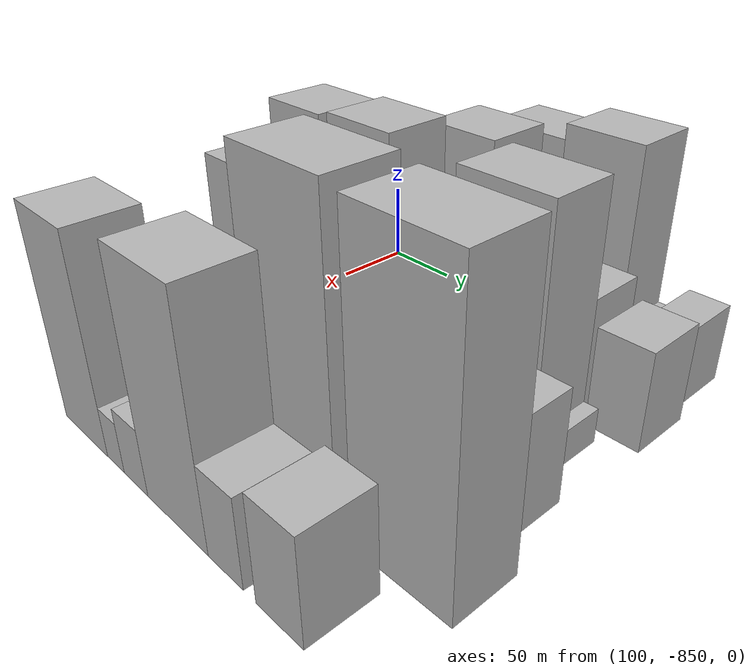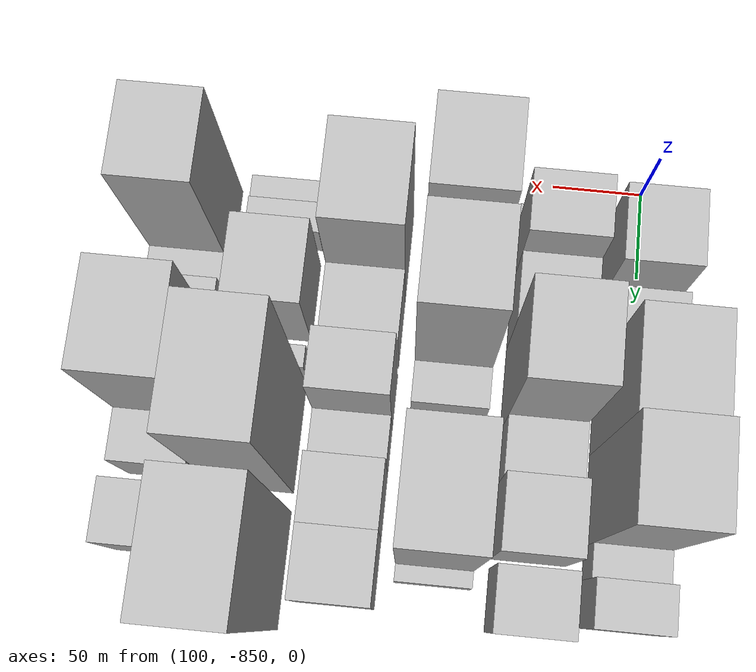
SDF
<sdf version="1.6">
 <world name="default">
  <model name="building_1">
   <static>1</static>
   <pose>100.0000 -804.8391 0 0.000000 0.000000 0.000000</pose>
   <link name="link">
    <pose>0 0 37.50 0 0 0</pose>
    <collision name="collision"><geometry><box><size>40.0000 40.3217 75.0000</size></box></geometry></collision>
    <visual name="visual">
     <cast_shadows>0</cast_shadows>
     <geometry><box><size>40.0000 40.3217 75.0000</size></box></geometry>
     <material>
      <script>
       <uri>model://HANNAS_wall/materials/scripts</uri>
       <uri>model://HANNAS_wall/materials/textures</uri>
       <name>vrc/HANNAS_wall</name>
      </script>
     </material>
    </visual>
   </link>
  </model>
  <model name="building_2">
   <static>1</static>
   <pose>100.0000 -767.2053 0 0.000000 0.000000 0.000000</pose>
   <link name="link">
    <pose>0 0 24.00 0 0 0</pose>
    <collision name="collision"><geometry><box><size>40.0000 24.9459 48.0000</size></box></geometry></collision>
    <visual name="visual">
     <cast_shadows>0</cast_shadows>
     <geometry><box><size>40.0000 24.9459 48.0000</size></box></geometry>
     <material>
      <script>
       <uri>model://HANNAS_wall/materials/scripts</uri>
       <uri>model://HANNAS_wall/materials/textures</uri>
       <name>vrc/HANNAS_wall</name>
      </script>
     </material>
    </visual>
   </link>
  </model>
  <model name="building_3">
   <static>1</static>
   <pose>100.0000 -722.9092 0 0.000000 0.000000 0.000000</pose>
   <link name="link">
    <pose>0 0 64.50 0 0 0</pose>
    <collision name="collision"><geometry><box><size>40.0000 49.6463 129.0000</size></box></geometry></collision>
    <visual name="visual">
     <cast_shadows>0</cast_shadows>
     <geometry><box><size>40.0000 49.6463 129.0000</size></box></geometry>
     <material>
      <script>
       <uri>model://HANNAS_wall/materials/scripts</uri>
       <uri>model://HANNAS_wall/materials/textures</uri>
       <name>vrc/HANNAS_wall</name>
      </script>
     </material>
    </visual>
   </link>
  </model>
  <model name="building_4">
   <static>1</static>
   <pose>100.0000 -673.7390 0 0.000000 0.000000 0.000000</pose>
   <link name="link">
    <pose>0 0 69.00 0 0 0</pose>
    <collision name="collision"><geometry><box><size>40.0000 48.6941 138.0000</size></box></geometry></collision>
    <visual name="visual">
     <cast_shadows>0</cast_shadows>
     <geometry><box><size>40.0000 48.6941 138.0000</size></box></geometry>
     <material>
      <script>
       <uri>model://HANNAS_wall/materials/scripts</uri>
       <uri>model://HANNAS_wall/materials/textures</uri>
       <name>vrc/HANNAS_wall</name>
      </script>
     </material>
    </visual>
   </link>
  </model>
  <model name="building_5">
   <static>1</static>
   <pose>100.0000 -640.6118 0 0.000000 0.000000 0.000000</pose>
   <link name="link">
    <pose>0 0 16.50 0 0 0</pose>
    <collision name="collision"><geometry><box><size>40.0000 17.5602 33.0000</size></box></geometry></collision>
    <visual name="visual">
     <cast_shadows>0</cast_shadows>
     <geometry><box><size>40.0000 17.5602 33.0000</size></box></geometry>
     <material>
      <script>
       <uri>model://HANNAS_wall/materials/scripts</uri>
       <uri>model://HANNAS_wall/materials/textures</uri>
       <name>vrc/HANNAS_wall</name>
      </script>
     </material>
    </visual>
   </link>
  </model>
  <model name="building_6">
   <static>1</static>
   <pose>100.0000 -619.4572 0 0.000000 0.000000 0.000000</pose>
   <link name="link">
    <pose>0 0 24.00 0 0 0</pose>
    <collision name="collision"><geometry><box><size>40.0000 24.7491 48.0000</size></box></geometry></collision>
    <visual name="visual">
     <cast_shadows>0</cast_shadows>
     <geometry><box><size>40.0000 24.7491 48.0000</size></box></geometry>
     <material>
      <script>
       <uri>model://HANNAS_wall/materials/scripts</uri>
       <uri>model://HANNAS_wall/materials/textures</uri>
       <name>vrc/HANNAS_wall</name>
      </script>
     </material>
    </visual>
   </link>
  </model>
  <model name="building_49">
   <static>1</static>
   <pose>149.0000 -825.1503 0 0.000000 0.000000 0.000000</pose>
   <link name="link">
    <pose>0 0 10.50 0 0 0</pose>
    <collision name="collision"><geometry><box><size>40.0000 9.6994 21.0000</size></box></geometry></collision>
    <visual name="visual">
     <cast_shadows>0</cast_shadows>
     <geometry><box><size>40.0000 9.6994 21.0000</size></box></geometry>
     <material>
      <script>
       <uri>model://HANNAS_wall/materials/scripts</uri>
       <uri>model://HANNAS_wall/materials/textures</uri>
       <name>vrc/HANNAS_wall</name>
      </script>
     </material>
    </visual>
   </link>
  </model>
  <model name="building_50">
   <static>1</static>
   <pose>149.0000 -804.3308 0 0.000000 0.000000 0.000000</pose>
   <link name="link">
    <pose>0 0 46.50 0 0 0</pose>
    <collision name="collision"><geometry><box><size>40.0000 31.9397 93.0000</size></box></geometry></collision>
    <visual name="visual">
     <cast_shadows>0</cast_shadows>
     <geometry><box><size>40.0000 31.9397 93.0000</size></box></geometry>
     <material>
      <script>
       <uri>model://HANNAS_wall/materials/scripts</uri>
       <uri>model://HANNAS_wall/materials/textures</uri>
       <name>vrc/HANNAS_wall</name>
      </script>
     </material>
    </visual>
   </link>
  </model>
  <model name="building_51">
   <static>1</static>
   <pose>149.0000 -770.3439 0 0.000000 0.000000 0.000000</pose>
   <link name="link">
    <pose>0 0 31.50 0 0 0</pose>
    <collision name="collision"><geometry><box><size>40.0000 36.0341 63.0000</size></box></geometry></collision>
    <visual name="visual">
     <cast_shadows>0</cast_shadows>
     <geometry><box><size>40.0000 36.0341 63.0000</size></box></geometry>
     <material>
      <script>
       <uri>model://HANNAS_wall/materials/scripts</uri>
       <uri>model://HANNAS_wall/materials/textures</uri>
       <name>vrc/HANNAS_wall</name>
      </script>
     </material>
    </visual>
   </link>
  </model>
  <model name="building_52">
   <static>1</static>
   <pose>149.0000 -729.2863 0 0.000000 0.000000 0.000000</pose>
   <link name="link">
    <pose>0 0 69.00 0 0 0</pose>
    <collision name="collision"><geometry><box><size>40.0000 46.0811 138.0000</size></box></geometry></collision>
    <visual name="visual">
     <cast_shadows>0</cast_shadows>
     <geometry><box><size>40.0000 46.0811 138.0000</size></box></geometry>
     <material>
      <script>
       <uri>model://HANNAS_wall/materials/scripts</uri>
       <uri>model://HANNAS_wall/materials/textures</uri>
       <name>vrc/HANNAS_wall</name>
      </script>
     </material>
    </visual>
   </link>
  </model>
  <model name="building_53">
   <static>1</static>
   <pose>149.0000 -691.0314 0 0.000000 0.000000 0.000000</pose>
   <link name="link">
    <pose>0 0 27.00 0 0 0</pose>
    <collision name="collision"><geometry><box><size>40.0000 30.4288 54.0000</size></box></geometry></collision>
    <visual name="visual">
     <cast_shadows>0</cast_shadows>
     <geometry><box><size>40.0000 30.4288 54.0000</size></box></geometry>
     <material>
      <script>
       <uri>model://HANNAS_wall/materials/scripts</uri>
       <uri>model://HANNAS_wall/materials/textures</uri>
       <name>vrc/HANNAS_wall</name>
      </script>
     </material>
    </visual>
   </link>
  </model>
  <model name="building_54">
   <static>1</static>
   <pose>149.0000 -656.9483 0 0.000000 0.000000 0.000000</pose>
   <link name="link">
    <pose>0 0 36.00 0 0 0</pose>
    <collision name="collision"><geometry><box><size>40.0000 37.7373 72.0000</size></box></geometry></collision>
    <visual name="visual">
     <cast_shadows>0</cast_shadows>
     <geometry><box><size>40.0000 37.7373 72.0000</size></box></geometry>
     <material>
      <script>
       <uri>model://HANNAS_wall/materials/scripts</uri>
       <uri>model://HANNAS_wall/materials/textures</uri>
       <name>vrc/HANNAS_wall</name>
      </script>
     </material>
    </visual>
   </link>
  </model>
  <model name="building_55">
   <static>1</static>
   <pose>149.0000 -616.6930 0 0.000000 0.000000 0.000000</pose>
   <link name="link">
    <pose>0 0 30.00 0 0 0</pose>
    <collision name="collision"><geometry><box><size>40.0000 32.7733 60.0000</size></box></geometry></collision>
    <visual name="visual">
     <cast_shadows>0</cast_shadows>
     <geometry><box><size>40.0000 32.7733 60.0000</size></box></geometry>
     <material>
      <script>
       <uri>model://HANNAS_wall/materials/scripts</uri>
       <uri>model://HANNAS_wall/materials/textures</uri>
       <name>vrc/HANNAS_wall</name>
      </script>
     </material>
    </visual>
   </link>
  </model>
  <model name="building_94">
   <static>1</static>
   <pose>198.0000 -808.0997 0 0.000000 0.000000 0.000000</pose>
   <link name="link">
    <pose>0 0 72.00 0 0 0</pose>
    <collision name="collision"><geometry><box><size>40.0000 43.8005 144.0000</size></box></geometry></collision>
    <visual name="visual">
     <cast_shadows>0</cast_shadows>
     <geometry><box><size>40.0000 43.8005 144.0000</size></box></geometry>
     <material>
      <script>
       <uri>model://HANNAS_wall/materials/scripts</uri>
       <uri>model://HANNAS_wall/materials/textures</uri>
       <name>vrc/HANNAS_wall</name>
      </script>
     </material>
    </visual>
   </link>
  </model>
  <model name="building_95">
   <static>1</static>
   <pose>198.0000 -755.5193 0 0.000000 0.000000 0.000000</pose>
   <link name="link">
    <pose>0 0 73.50 0 0 0</pose>
    <collision name="collision"><geometry><box><size>40.0000 47.3603 147.0000</size></box></geometry></collision>
    <visual name="visual">
     <cast_shadows>0</cast_shadows>
     <geometry><box><size>40.0000 47.3603 147.0000</size></box></geometry>
     <material>
      <script>
       <uri>model://HANNAS_wall/materials/scripts</uri>
       <uri>model://HANNAS_wall/materials/textures</uri>
       <name>vrc/HANNAS_wall</name>
      </script>
     </material>
    </visual>
   </link>
  </model>
  <model name="building_96">
   <static>1</static>
   <pose>198.0000 -721.0530 0 0.000000 0.000000 0.000000</pose>
   <link name="link">
    <pose>0 0 21.00 0 0 0</pose>
    <collision name="collision"><geometry><box><size>40.0000 21.5724 42.0000</size></box></geometry></collision>
    <visual name="visual">
     <cast_shadows>0</cast_shadows>
     <geometry><box><size>40.0000 21.5724 42.0000</size></box></geometry>
     <material>
      <script>
       <uri>model://HANNAS_wall/materials/scripts</uri>
       <uri>model://HANNAS_wall/materials/textures</uri>
       <name>vrc/HANNAS_wall</name>
      </script>
     </material>
    </visual>
   </link>
  </model>
  <model name="building_97">
   <static>1</static>
   <pose>198.0000 -697.2040 0 0.000000 0.000000 0.000000</pose>
   <link name="link">
    <pose>0 0 9.00 0 0 0</pose>
    <collision name="collision"><geometry><box><size>40.0000 8.1257 18.0000</size></box></geometry></collision>
    <visual name="visual">
     <cast_shadows>0</cast_shadows>
     <geometry><box><size>40.0000 8.1257 18.0000</size></box></geometry>
     <material>
      <script>
       <uri>model://HANNAS_wall/materials/scripts</uri>
       <uri>model://HANNAS_wall/materials/textures</uri>
       <name>vrc/HANNAS_wall</name>
      </script>
     </material>
    </visual>
   </link>
  </model>
  <model name="building_98">
   <static>1</static>
   <pose>198.0000 -658.5520 0 0.000000 0.000000 0.000000</pose>
   <link name="link">
    <pose>0 0 72.00 0 0 0</pose>
    <collision name="collision"><geometry><box><size>40.0000 57.1782 144.0000</size></box></geometry></collision>
    <visual name="visual">
     <cast_shadows>0</cast_shadows>
     <geometry><box><size>40.0000 57.1782 144.0000</size></box></geometry>
     <material>
      <script>
       <uri>model://HANNAS_wall/materials/scripts</uri>
       <uri>model://HANNAS_wall/materials/textures</uri>
       <name>vrc/HANNAS_wall</name>
      </script>
     </material>
    </visual>
   </link>
  </model>
  <model name="building_99">
   <static>1</static>
   <pose>198.0000 -625.5107 0 0.000000 0.000000 0.000000</pose>
   <link name="link">
    <pose>0 0 10.50 0 0 0</pose>
    <collision name="collision"><geometry><box><size>40.0000 8.9044 21.0000</size></box></geometry></collision>
    <visual name="visual">
     <cast_shadows>0</cast_shadows>
     <geometry><box><size>40.0000 8.9044 21.0000</size></box></geometry>
     <material>
      <script>
       <uri>model://HANNAS_wall/materials/scripts</uri>
       <uri>model://HANNAS_wall/materials/textures</uri>
       <name>vrc/HANNAS_wall</name>
      </script>
     </material>
    </visual>
   </link>
  </model>
  <model name="building_145">
   <static>1</static>
   <pose>247.0000 -797.3439 0 0.000000 0.000000 0.000000</pose>
   <link name="link">
    <pose>0 0 63.00 0 0 0</pose>
    <collision name="collision"><geometry><box><size>40.0000 49.3121 126.0000</size></box></geometry></collision>
    <visual name="visual">
     <cast_shadows>0</cast_shadows>
     <geometry><box><size>40.0000 49.3121 126.0000</size></box></geometry>
     <material>
      <script>
       <uri>model://HANNAS_wall/materials/scripts</uri>
       <uri>model://HANNAS_wall/materials/textures</uri>
       <name>vrc/HANNAS_wall</name>
      </script>
     </material>
    </visual>
   </link>
  </model>
  <model name="building_146">
   <static>1</static>
   <pose>247.0000 -754.3686 0 0.000000 0.000000 0.000000</pose>
   <link name="link">
    <pose>0 0 31.50 0 0 0</pose>
    <collision name="collision"><geometry><box><size>40.0000 36.6385 63.0000</size></box></geometry></collision>
    <visual name="visual">
     <cast_shadows>0</cast_shadows>
     <geometry><box><size>40.0000 36.6385 63.0000</size></box></geometry>
     <material>
      <script>
       <uri>model://HANNAS_wall/materials/scripts</uri>
       <uri>model://HANNAS_wall/materials/textures</uri>
       <name>vrc/HANNAS_wall</name>
      </script>
     </material>
    </visual>
   </link>
  </model>
  <model name="building_147">
   <static>1</static>
   <pose>247.0000 -716.3079 0 0.000000 0.000000 0.000000</pose>
   <link name="link">
    <pose>0 0 48.00 0 0 0</pose>
    <collision name="collision"><geometry><box><size>40.0000 29.4830 96.0000</size></box></geometry></collision>
    <visual name="visual">
     <cast_shadows>0</cast_shadows>
     <geometry><box><size>40.0000 29.4830 96.0000</size></box></geometry>
     <material>
      <script>
       <uri>model://HANNAS_wall/materials/scripts</uri>
       <uri>model://HANNAS_wall/materials/textures</uri>
       <name>vrc/HANNAS_wall</name>
      </script>
     </material>
    </visual>
   </link>
  </model>
  <model name="building_148">
   <static>1</static>
   <pose>247.0000 -689.1758 0 0.000000 0.000000 0.000000</pose>
   <link name="link">
    <pose>0 0 22.50 0 0 0</pose>
    <collision name="collision"><geometry><box><size>40.0000 24.7811 45.0000</size></box></geometry></collision>
    <visual name="visual">
     <cast_shadows>0</cast_shadows>
     <geometry><box><size>40.0000 24.7811 45.0000</size></box></geometry>
     <material>
      <script>
       <uri>model://HANNAS_wall/materials/scripts</uri>
       <uri>model://HANNAS_wall/materials/textures</uri>
       <name>vrc/HANNAS_wall</name>
      </script>
     </material>
    </visual>
   </link>
  </model>
  <model name="building_149">
   <static>1</static>
   <pose>247.0000 -659.6586 0 0.000000 0.000000 0.000000</pose>
   <link name="link">
    <pose>0 0 33.00 0 0 0</pose>
    <collision name="collision"><geometry><box><size>40.0000 34.2533 66.0000</size></box></geometry></collision>
    <visual name="visual">
     <cast_shadows>0</cast_shadows>
     <geometry><box><size>40.0000 34.2533 66.0000</size></box></geometry>
     <material>
      <script>
       <uri>model://HANNAS_wall/materials/scripts</uri>
       <uri>model://HANNAS_wall/materials/textures</uri>
       <name>vrc/HANNAS_wall</name>
      </script>
     </material>
    </visual>
   </link>
  </model>
  <model name="building_150">
   <static>1</static>
   <pose>247.0000 -624.3403 0 0.000000 0.000000 0.000000</pose>
   <link name="link">
    <pose>0 0 33.00 0 0 0</pose>
    <collision name="collision"><geometry><box><size>40.0000 36.3832 66.0000</size></box></geometry></collision>
    <visual name="visual">
     <cast_shadows>0</cast_shadows>
     <geometry><box><size>40.0000 36.3832 66.0000</size></box></geometry>
     <material>
      <script>
       <uri>model://HANNAS_wall/materials/scripts</uri>
       <uri>model://HANNAS_wall/materials/textures</uri>
       <name>vrc/HANNAS_wall</name>
      </script>
     </material>
    </visual>
   </link>
  </model>
  <model name="building_200">
   <static>1</static>
   <pose>296.0000 -823.2537 0 0.000000 0.000000 0.000000</pose>
   <link name="link">
    <pose>0 0 13.50 0 0 0</pose>
    <collision name="collision"><geometry><box><size>40.0000 13.4927 27.0000</size></box></geometry></collision>
    <visual name="visual">
     <cast_shadows>0</cast_shadows>
     <geometry><box><size>40.0000 13.4927 27.0000</size></box></geometry>
     <material>
      <script>
       <uri>model://HANNAS_wall/materials/scripts</uri>
       <uri>model://HANNAS_wall/materials/textures</uri>
       <name>vrc/HANNAS_wall</name>
      </script>
     </material>
    </visual>
   </link>
  </model>
  <model name="building_201">
   <static>1</static>
   <pose>296.0000 -807.9969 0 0.000000 0.000000 0.000000</pose>
   <link name="link">
    <pose>0 0 15.00 0 0 0</pose>
    <collision name="collision"><geometry><box><size>40.0000 17.0209 30.0000</size></box></geometry></collision>
    <visual name="visual">
     <cast_shadows>0</cast_shadows>
     <geometry><box><size>40.0000 17.0209 30.0000</size></box></geometry>
     <material>
      <script>
       <uri>model://HANNAS_wall/materials/scripts</uri>
       <uri>model://HANNAS_wall/materials/textures</uri>
       <name>vrc/HANNAS_wall</name>
      </script>
     </material>
    </visual>
   </link>
  </model>
  <model name="building_202">
   <static>1</static>
   <pose>296.0000 -768.5908 0 0.000000 0.000000 0.000000</pose>
   <link name="link">
    <pose>0 0 37.50 0 0 0</pose>
    <collision name="collision"><geometry><box><size>40.0000 43.7914 75.0000</size></box></geometry></collision>
    <visual name="visual">
     <cast_shadows>0</cast_shadows>
     <geometry><box><size>40.0000 43.7914 75.0000</size></box></geometry>
     <material>
      <script>
       <uri>model://HANNAS_wall/materials/scripts</uri>
       <uri>model://HANNAS_wall/materials/textures</uri>
       <name>vrc/HANNAS_wall</name>
      </script>
     </material>
    </visual>
   </link>
  </model>
  <model name="building_203">
   <static>1</static>
   <pose>296.0000 -731.6999 0 0.000000 0.000000 0.000000</pose>
   <link name="link">
    <pose>0 0 13.50 0 0 0</pose>
    <collision name="collision"><geometry><box><size>40.0000 11.9903 27.0000</size></box></geometry></collision>
    <visual name="visual">
     <cast_shadows>0</cast_shadows>
     <geometry><box><size>40.0000 11.9903 27.0000</size></box></geometry>
     <material>
      <script>
       <uri>model://HANNAS_wall/materials/scripts</uri>
       <uri>model://HANNAS_wall/materials/textures</uri>
       <name>vrc/HANNAS_wall</name>
      </script>
     </material>
    </visual>
   </link>
  </model>
  <model name="building_204">
   <static>1</static>
   <pose>296.0000 -692.1626 0 0.000000 0.000000 0.000000</pose>
   <link name="link">
    <pose>0 0 85.50 0 0 0</pose>
    <collision name="collision"><geometry><box><size>40.0000 59.0845 171.0000</size></box></geometry></collision>
    <visual name="visual">
     <cast_shadows>0</cast_shadows>
     <geometry><box><size>40.0000 59.0845 171.0000</size></box></geometry>
     <material>
      <script>
       <uri>model://HANNAS_wall/materials/scripts</uri>
       <uri>model://HANNAS_wall/materials/textures</uri>
       <name>vrc/HANNAS_wall</name>
      </script>
     </material>
    </visual>
   </link>
  </model>
  <model name="building_205">
   <static>1</static>
   <pose>296.0000 -621.8598 0 0.000000 0.000000 0.000000</pose>
   <link name="link">
    <pose>0 0 84.00 0 0 0</pose>
    <collision name="collision"><geometry><box><size>40.0000 61.5211 168.0000</size></box></geometry></collision>
    <visual name="visual">
     <cast_shadows>0</cast_shadows>
     <geometry><box><size>40.0000 61.5211 168.0000</size></box></geometry>
     <material>
      <script>
       <uri>model://HANNAS_wall/materials/scripts</uri>
       <uri>model://HANNAS_wall/materials/textures</uri>
       <name>vrc/HANNAS_wall</name>
      </script>
     </material>
    </visual>
   </link>
  </model>
  <model name="building_245">
   <static>1</static>
   <pose>345.0000 -806.7340 0 0.000000 0.000000 0.000000</pose>
   <link name="link">
    <pose>0 0 63.00 0 0 0</pose>
    <collision name="collision"><geometry><box><size>40.0000 46.5320 126.0000</size></box></geometry></collision>
    <visual name="visual">
     <cast_shadows>0</cast_shadows>
     <geometry><box><size>40.0000 46.5320 126.0000</size></box></geometry>
     <material>
      <script>
       <uri>model://HANNAS_wall/materials/scripts</uri>
       <uri>model://HANNAS_wall/materials/textures</uri>
       <name>vrc/HANNAS_wall</name>
      </script>
     </material>
    </visual>
   </link>
  </model>
  <model name="building_246">
   <static>1</static>
   <pose>345.0000 -774.9046 0 0.000000 0.000000 0.000000</pose>
   <link name="link">
    <pose>0 0 15.00 0 0 0</pose>
    <collision name="collision"><geometry><box><size>40.0000 17.1268 30.0000</size></box></geometry></collision>
    <visual name="visual">
     <cast_shadows>0</cast_shadows>
     <geometry><box><size>40.0000 17.1268 30.0000</size></box></geometry>
     <material>
      <script>
       <uri>model://HANNAS_wall/materials/scripts</uri>
       <uri>model://HANNAS_wall/materials/textures</uri>
       <name>vrc/HANNAS_wall</name>
      </script>
     </material>
    </visual>
   </link>
  </model>
  <model name="building_247">
   <static>1</static>
   <pose>345.0000 -754.8859 0 0.000000 0.000000 0.000000</pose>
   <link name="link">
    <pose>0 0 19.50 0 0 0</pose>
    <collision name="collision"><geometry><box><size>40.0000 22.9105 39.0000</size></box></geometry></collision>
    <visual name="visual">
     <cast_shadows>0</cast_shadows>
     <geometry><box><size>40.0000 22.9105 39.0000</size></box></geometry>
     <material>
      <script>
       <uri>model://HANNAS_wall/materials/scripts</uri>
       <uri>model://HANNAS_wall/materials/textures</uri>
       <name>vrc/HANNAS_wall</name>
      </script>
     </material>
    </visual>
   </link>
  </model>
  <model name="building_248">
   <static>1</static>
   <pose>345.0000 -717.3713 0 0.000000 0.000000 0.000000</pose>
   <link name="link">
    <pose>0 0 67.50 0 0 0</pose>
    <collision name="collision"><geometry><box><size>40.0000 52.1188 135.0000</size></box></geometry></collision>
    <visual name="visual">
     <cast_shadows>0</cast_shadows>
     <geometry><box><size>40.0000 52.1188 135.0000</size></box></geometry>
     <material>
      <script>
       <uri>model://HANNAS_wall/materials/scripts</uri>
       <uri>model://HANNAS_wall/materials/textures</uri>
       <name>vrc/HANNAS_wall</name>
      </script>
     </material>
    </visual>
   </link>
  </model>
  <model name="building_249">
   <static>1</static>
   <pose>345.0000 -677.9812 0 0.000000 0.000000 0.000000</pose>
   <link name="link">
    <pose>0 0 25.50 0 0 0</pose>
    <collision name="collision"><geometry><box><size>40.0000 26.6615 51.0000</size></box></geometry></collision>
    <visual name="visual">
     <cast_shadows>0</cast_shadows>
     <geometry><box><size>40.0000 26.6615 51.0000</size></box></geometry>
     <material>
      <script>
       <uri>model://HANNAS_wall/materials/scripts</uri>
       <uri>model://HANNAS_wall/materials/textures</uri>
       <name>vrc/HANNAS_wall</name>
      </script>
     </material>
    </visual>
   </link>
  </model>
  <model name="building_250">
   <static>1</static>
   <pose>345.0000 -639.7351 0 0.000000 0.000000 0.000000</pose>
   <link name="link">
    <pose>0 0 30.00 0 0 0</pose>
    <collision name="collision"><geometry><box><size>40.0000 31.8307 60.0000</size></box></geometry></collision>
    <visual name="visual">
     <cast_shadows>0</cast_shadows>
     <geometry><box><size>40.0000 31.8307 60.0000</size></box></geometry>
     <material>
      <script>
       <uri>model://HANNAS_wall/materials/scripts</uri>
       <uri>model://HANNAS_wall/materials/textures</uri>
       <name>vrc/HANNAS_wall</name>
      </script>
     </material>
    </visual>
   </link>
  </model>
 </world>
</sdf>
